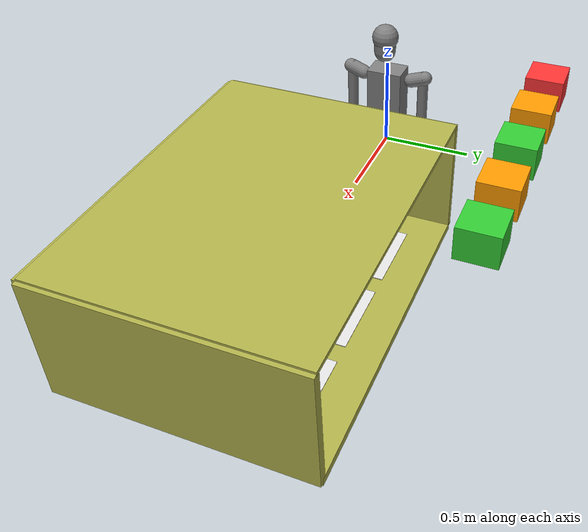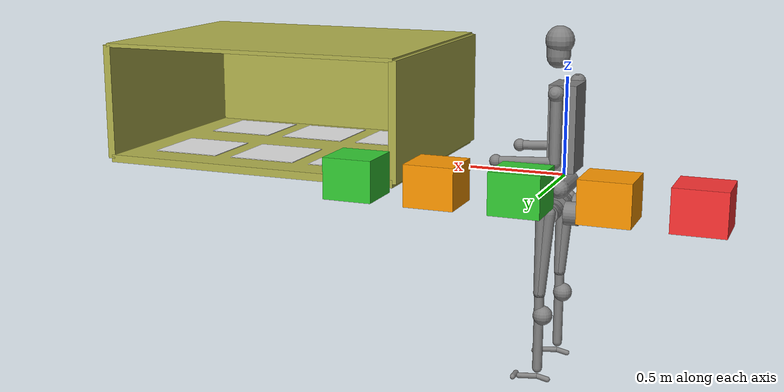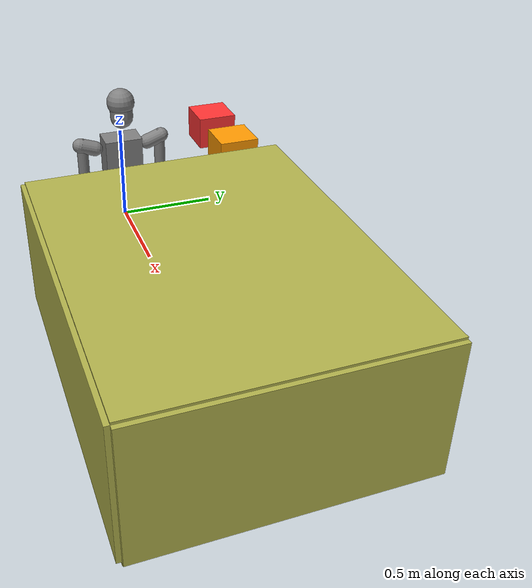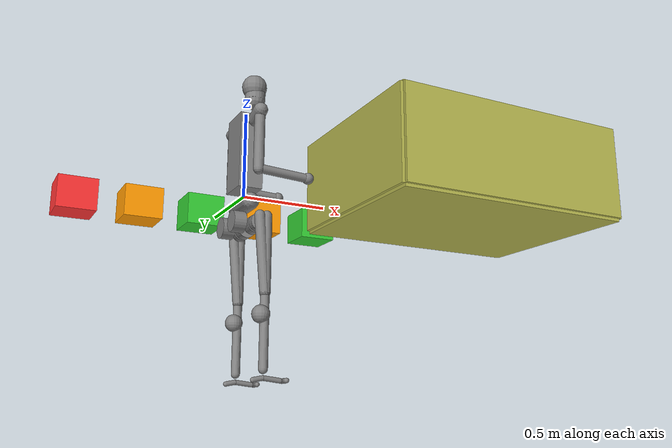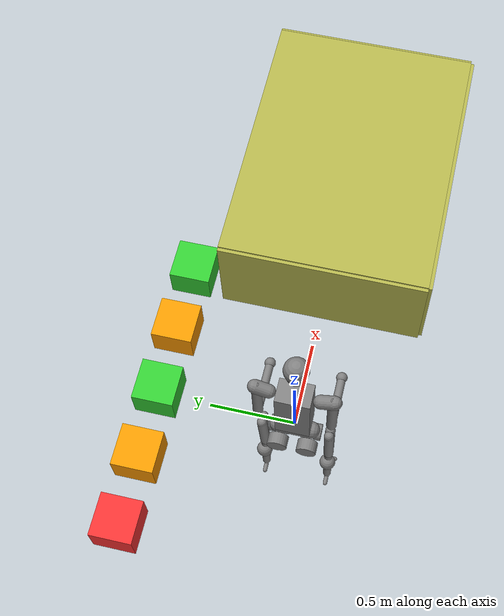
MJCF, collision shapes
<mujoco model="truck_loading_h1">
  <compiler angle="radian" autolimits="true" meshdir="mujoco_menagerie/unitree_h1/assets"/>

  <option timestep="0.002" gravity="0 0 -9.81"/>

  <include file="mujoco_menagerie/unitree_h1/scene.xml"/>

  <asset>
    <texture name="floor_tex" type="2d" builtin="checker" rgb1="0.6 0.6 0.6" rgb2="0.4 0.4 0.4" width="100" height="100"/>
    <material name="floor_mat" texture="floor_tex" texrepeat="5 5" reflectance="0.2"/>
    <material name="truck_mat" rgba="0.7 0.7 0.3 0.3"/>
    <material name="box_p1" rgba="1.0 0.2 0.2 1"/>
    <material name="box_p2" rgba="1.0 0.6 0.0 1"/>
    <material name="box_p3" rgba="0.2 0.8 0.2 1"/>
    <material name="slot_mat" rgba="0.9 0.9 0.9 0.4"/>
  </asset>

  <worldbody>
    <body name="truck" pos="1.5 0 0">
      <geom name="truck_floor" type="box" size="0.8 0.6 0.02" pos="0 0 0.02" material="truck_mat"/>
      <geom name="truck_left" type="box" size="0.02 0.6 0.3" pos="-0.8 0 0.32" material="truck_mat"/>
      <geom name="truck_right" type="box" size="0.02 0.6 0.3" pos="0.8 0 0.32" material="truck_mat"/>
      <geom name="truck_back" type="box" size="0.8 0.02 0.3" pos="0 -0.6 0.32" material="truck_mat"/>
      <geom name="truck_roof" type="box" size="0.8 0.6 0.01" pos="0 0 0.62" material="truck_mat"/>

      <geom name="slot_b1" type="box" size="0.18 0.18 0.002" pos="-0.45 -0.35 0.042" material="slot_mat"/>
      <geom name="slot_b2" type="box" size="0.18 0.18 0.002" pos="0.0 -0.35 0.042" material="slot_mat"/>
      <geom name="slot_b3" type="box" size="0.18 0.18 0.002" pos="0.45 -0.35 0.042" material="slot_mat"/>
      <geom name="slot_f1" type="box" size="0.18 0.18 0.002" pos="-0.45 0.25 0.042" material="slot_mat"/>
      <geom name="slot_f2" type="box" size="0.18 0.18 0.002" pos="0.0 0.25 0.042" material="slot_mat"/>
      <geom name="slot_f3" type="box" size="0.18 0.18 0.002" pos="0.45 0.25 0.042" material="slot_mat"/>
    </body>

    <body name="box_1" pos="-0.8 0.8 0.1">
      <freejoint/>
      <geom name="box_1_geom" type="box" size="0.12 0.12 0.1" material="box_p1" friction="0.8 0.005 0.0001"/>
      <site name="box_1_site" size="0.01"/>
    </body>

    <body name="box_2" pos="-0.4 0.8 0.1">
      <freejoint/>
      <geom name="box_2_geom" type="box" size="0.12 0.12 0.1" material="box_p2" friction="0.8 0.005 0.0001"/>
      <site name="box_2_site" size="0.01"/>
    </body>

    <body name="box_3" pos="0.0 0.8 0.1">
      <freejoint/>
      <geom name="box_3_geom" type="box" size="0.12 0.12 0.1" material="box_p3" friction="0.8 0.005 0.0001"/>
      <site name="box_3_site" size="0.01"/>
    </body>

    <body name="box_4" pos="0.4 0.8 0.1">
      <freejoint/>
      <geom name="box_4_geom" type="box" size="0.12 0.12 0.1" material="box_p2" friction="0.8 0.005 0.0001"/>
      <site name="box_4_site" size="0.01"/>
    </body>

    <body name="box_5" pos="0.8 0.8 0.1">
      <freejoint/>
      <geom name="box_5_geom" type="box" size="0.12 0.12 0.1" material="box_p3" friction="0.8 0.005 0.0001"/>
      <site name="box_5_site" size="0.01"/>
    </body>

    <camera name="topdown_cam" pos="1.5 0 4.0" euler="0 0 0" fovy="60"/>
    <camera name="side_cam" pos="-2 -2 2" euler="0.6 0 -0.8" fovy="50"/>
    <camera name="front_cam" pos="1.5 -3 1.5" euler="0.4 0 0" fovy="50"/>
  </worldbody>

  <sensor>
    <framepos name="box1_pos" objtype="site" objname="box_1_site"/>
    <framepos name="box2_pos" objtype="site" objname="box_2_site"/>
    <framepos name="box3_pos" objtype="site" objname="box_3_site"/>
    <framepos name="box4_pos" objtype="site" objname="box_4_site"/>
    <framepos name="box5_pos" objtype="site" objname="box_5_site"/>
  </sensor>
</mujoco>

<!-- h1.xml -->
<mujoco model="h1">
  <compiler angle="radian" meshdir="assets" autolimits="true"/>

  <statistic meansize="0.05"/>

  <default>
    <default class="h1">
      <joint damping="1" armature="0.1"/>
      <default class="visual">
        <geom type="mesh" contype="0" conaffinity="0" group="2" material="black"/>
      </default>
      <default class="collision">
        <geom group="3" mass="0" density="0"/>
        <default class="foot">
          <geom type="capsule" size=".014"/>
          <default class="foot1">
            <geom fromto="-.035 0 -0.056 .02 0 -0.045"/>
          </default>
          <default class="foot2">
            <geom fromto=".02 0 -0.045 .115 0 -0.056"/>
          </default>
          <default class="foot3">
            <geom fromto=".14 -.03 -0.056 .14 .03 -0.056"/>
          </default>
        </default>
      </default>
      <site size="0.001" rgba="0.5 0.5 0.5 0.3" group="4"/>
    </default>
  </default>

  <asset>
    <material name="black" rgba="0.1 0.1 0.1 1"/>
    <material name="white" rgba="1 1 1 1"/>

    <mesh file="pelvis.stl"/>
    <mesh file="left_hip_yaw_link.stl"/>
    <mesh file="left_hip_roll_link.stl"/>
    <mesh file="left_hip_pitch_link.stl"/>
    <mesh file="left_knee_link.stl"/>
    <mesh file="left_ankle_link.stl"/>
    <mesh file="right_hip_yaw_link.stl"/>
    <mesh file="right_hip_roll_link.stl"/>
    <mesh file="right_hip_pitch_link.stl"/>
    <mesh file="right_knee_link.stl"/>
    <mesh file="right_ankle_link.stl"/>
    <mesh file="torso_link.stl"/>
    <mesh file="left_shoulder_pitch_link.stl"/>
    <mesh file="left_shoulder_roll_link.stl"/>
    <mesh file="left_shoulder_yaw_link.stl"/>
    <mesh file="left_elbow_link.stl"/>
    <mesh file="right_shoulder_pitch_link.stl"/>
    <mesh file="right_shoulder_roll_link.stl"/>
    <mesh file="right_shoulder_yaw_link.stl"/>
    <mesh file="right_elbow_link.stl"/>
    <mesh file="logo_link.stl"/>
  </asset>

  <worldbody>
    <body name="pelvis" pos="0 0 0" childclass="h1">
      <inertial pos="-0.0002 4e-05 -0.04522" quat="0.498303 0.499454 -0.500496 0.501741" mass="5.39"
        diaginertia="0.0490211 0.0445821 0.00824619"/>
      <geom class="visual" mesh="pelvis"/>
      <body name="left_hip_yaw_link" pos="0 0.0875 -0.1742">
        <inertial pos="-0.04923 0.0001 0.0072" quat="0.69699 0.219193 0.233287 0.641667" mass="2.244"
          diaginertia="0.00304494 0.00296885 0.00189201"/>
        <joint name="left_hip_yaw" axis="0 0 1" range="-0.43 0.43"/>
        <geom class="visual" mesh="left_hip_yaw_link"/>
        <geom size="0.06 0.035" pos="-0.067 0 0" quat="0.707123 0 0.70709 0" type="cylinder" class="collision"/>
        <body name="left_hip_roll_link" pos="0.039468 0 0">
          <inertial pos="-0.0058 -0.00319 -9e-05" quat="0.0438242 0.70721 -0.0729075 0.701867" mass="2.232"
            diaginertia="0.00243264 0.00225325 0.00205492"/>
          <joint name="left_hip_roll" axis="1 0 0" range="-0.43 0.43"/>
          <geom class="visual" mesh="left_hip_roll_link"/>
          <geom class="collision" type="cylinder" size="0.05 0.03" quat="1 1 0 0" pos="0 -0.02 0"/>
          <body name="left_hip_pitch_link" pos="0 0.11536 0">
            <inertial pos="0.00746 -0.02346 -0.08193" quat="0.979828 0.0513522 -0.0169854 -0.192382" mass="4.152"
              diaginertia="0.0829503 0.0821457 0.00510909"/>
            <joint name="left_hip_pitch" axis="0 1 0" range="-1.57 1.57"/>
            <geom class="visual" mesh="left_hip_pitch_link"/>
            <geom class="collision" type="capsule" size="0.03" fromto="0.02 0 -0.4 -0.02 0 0.02"/>
            <geom class="collision" type="capsule" size="0.03" fromto="0.02 0 -0.4 0.02 0 0.02"/>
            <geom class="collision" type="cylinder" size="0.05 0.02" quat="1 1 0 0" pos="0 -0.07 0"/>
            <body name="left_knee_link" pos="0 0 -0.4">
              <inertial pos="-0.00136 -0.00512 -0.1384" quat="0.626132 -0.034227 -0.0416277 0.777852" mass="1.721"
                diaginertia="0.0125237 0.0123104 0.0019428"/>
              <joint name="left_knee" axis="0 1 0" range="-0.26 2.05"/>
              <geom class="visual" mesh="left_knee_link"/>
              <geom class="collision" type="capsule" size="0.025" fromto="0.02 0 -0.4 0.02 0 0"/>
              <geom class="collision" type="sphere" size="0.05" pos="0 0 -0.115"/>
              <body name="left_ankle_link" pos="0 0 -0.4">
                <inertial pos="0.06722 0.00015 -0.04497" quat="0.489101 0.503197 0.565782 0.432972" mass="0.446"
                  diaginertia="0.00220848 0.00218961 0.000214202"/>
                <joint name="left_ankle" axis="0 1 0" range="-0.87 0.52"/>
                <geom class="visual" mesh="left_ankle_link"/>
                <geom class="foot1"/>
                <geom class="foot2"/>
                <geom class="foot3"/>
              </body>
            </body>
          </body>
        </body>
      </body>
      <body name="right_hip_yaw_link" pos="0 -0.0875 -0.1742">
        <inertial pos="-0.04923 -0.0001 0.0072" quat="0.641667 0.233287 0.219193 0.69699" mass="2.244"
          diaginertia="0.00304494 0.00296885 0.00189201"/>
        <joint name="right_hip_yaw" axis="0 0 1" range="-0.43 0.43"/>
        <geom class="visual" mesh="right_hip_yaw_link"/>
        <geom size="0.06 0.035" pos="-0.067 0 0" quat="0.707123 0 0.70709 0" type="cylinder" class="collision"/>
        <body name="right_hip_roll_link" pos="0.039468 0 0">
          <inertial pos="-0.0058 0.00319 -9e-05" quat="-0.0438242 0.70721 0.0729075 0.701867" mass="2.232"
            diaginertia="0.00243264 0.00225325 0.00205492"/>
          <joint name="right_hip_roll" axis="1 0 0" range="-0.43 0.43"/>
          <geom class="visual" mesh="right_hip_roll_link"/>
          <geom class="collision" type="cylinder" size="0.05 0.03" quat="1 1 0 0" pos="0 0.02 0"/>
          <body name="right_hip_pitch_link" pos="0 -0.11536 0">
            <inertial pos="0.00746 0.02346 -0.08193" quat="0.979828 -0.0513522 -0.0169854 0.192382" mass="4.152"
              diaginertia="0.0829503 0.0821457 0.00510909"/>
            <joint name="right_hip_pitch" axis="0 1 0" range="-1.57 1.57"/>
            <geom class="visual" mesh="right_hip_pitch_link"/>
            <geom class="collision" type="capsule" size="0.03" fromto="0.02 0 -0.4 -0.02 0 0.02"/>
            <geom class="collision" type="capsule" size="0.03" fromto="0.02 0 -0.4 0.02 0 0.02"/>
            <geom class="collision" type="cylinder" size="0.05 0.02" quat="1 1 0 0" pos="0 0.07 0"/>
            <body name="right_knee_link" pos="0 0 -0.4">
              <inertial pos="-0.00136 0.00512 -0.1384" quat="0.777852 -0.0416277 -0.034227 0.626132" mass="1.721"
                diaginertia="0.0125237 0.0123104 0.0019428"/>
              <joint name="right_knee" axis="0 1 0" range="-0.26 2.05"/>
              <geom class="visual" mesh="right_knee_link"/>
              <geom class="collision" type="capsule" size="0.025" fromto="0.02 0 -0.4 0.02 0 0"/>
              <geom class="collision" type="sphere" size="0.05" pos="0 0 -0.115"/>
              <body name="right_ankle_link" pos="0 0 -0.4">
                <inertial pos="0.06722 -0.00015 -0.04497" quat="0.432972 0.565782 0.503197 0.489101" mass="0.446"
                  diaginertia="0.00220848 0.00218961 0.000214202"/>
                <joint name="right_ankle" axis="0 1 0" range="-0.87 0.52"/>
                <geom class="visual" mesh="right_ankle_link"/>
                <geom class="foot1"/>
                <geom class="foot2"/>
                <geom class="foot3"/>
              </body>
            </body>
          </body>
        </body>
      </body>
      <body name="torso_link">
        <inertial pos="0.000489 0.002797 0.20484" quat="0.999989 -0.00130808 -0.00282289 -0.00349105" mass="17.789"
          diaginertia="0.487315 0.409628 0.127837"/>
        <joint name="torso" axis="0 0 1" range="-2.35 2.35"/>
        <geom class="visual" mesh="torso_link"/>
        <geom class="visual" material="white" mesh="logo_link"/>
        <geom name="head" class="collision" type="capsule" size="0.06" fromto="0.05 0 0.68 0.05 0 0.6"/>
        <geom name="helmet" class="collision" type="sphere" size="0.073" pos="0.045 0 0.68"/>
        <geom name="torso" class="collision" type="box" size="0.07 0.1 0.22" pos="0 0 0.25"/>
        <geom name="hip" class="collision" type="capsule" size="0.05" fromto="0 -0.1 -0.05 0 0.1 -0.05"/>
        <site name="imu" pos="-0.04452 -0.01891 0.27756"/>
        <body name="left_shoulder_pitch_link" pos="0.0055 0.15535 0.42999" quat="0.976296 0.216438 0 0">
          <inertial pos="0.005045 0.053657 -0.015715" quat="0.814858 0.579236 -0.0201072 -0.00936488" mass="1.033"
            diaginertia="0.00129936 0.000987113 0.000858198"/>
          <joint name="left_shoulder_pitch" axis="0 1 0" range="-2.87 2.87"/>
          <geom class="visual" mesh="left_shoulder_pitch_link"/>
          <body name="left_shoulder_roll_link" pos="-0.0055 0.0565 -0.0165" quat="0.976296 -0.216438 0 0">
            <inertial pos="0.000679 0.00115 -0.094076" quat="0.732491 0.00917179 0.0766656 0.676384" mass="0.793"
              diaginertia="0.00170388 0.00158256 0.00100336"/>
            <joint name="left_shoulder_roll" axis="1 0 0" range="-0.34 3.11"/>
            <geom class="visual" mesh="left_shoulder_roll_link"/>
            <geom name="left_shoulder" class="collision" type="capsule" size="0.04" fromto="0 0.01 0.008 0 -0.07 -0.02"/>
            <body name="left_shoulder_yaw_link" pos="0 0 -0.1343">
              <inertial pos="0.01365 0.002767 -0.16266" quat="0.703042 -0.0331229 -0.0473362 0.708798" mass="0.839"
                diaginertia="0.00408038 0.00370367 0.000622687"/>
              <joint name="left_shoulder_yaw" axis="0 0 1" range="-1.3 4.45"/>
              <geom class="visual" mesh="left_shoulder_yaw_link"/>
              <geom class="collision" type="capsule" size="0.03" fromto="0 0 0.15 0 0 -0.2"/>
              <body name="left_elbow_link" pos="0.0185 0 -0.198">
                <inertial pos="0.15908 -0.000144 -0.015776" quat="0.0765232 0.720327 0.0853116 0.684102" mass="0.669"
                  diaginertia="0.00601829 0.00600579 0.000408305"/>
                <joint name="left_elbow" axis="0 1 0" range="-1.25 2.61"/>
                <geom class="visual" mesh="left_elbow_link"/>
                <geom class="collision" type="capsule" size="0.025" fromto="0 0 0 0.28 0 -0.015"/>
                <geom class="collision" type="sphere" size="0.033" pos="0.28 0 -0.015"/>
              </body>
            </body>
          </body>
        </body>
        <body name="right_shoulder_pitch_link" pos="0.0055 -0.15535 0.42999" quat="0.976296 -0.216438 0 0">
          <inertial pos="0.005045 -0.053657 -0.015715" quat="0.579236 0.814858 0.00936488 0.0201072" mass="1.033"
            diaginertia="0.00129936 0.000987113 0.000858198"/>
          <joint name="right_shoulder_pitch" axis="0 1 0" range="-2.87 2.87"/>
          <geom class="visual" mesh="right_shoulder_pitch_link"/>
          <body name="right_shoulder_roll_link" pos="-0.0055 -0.0565 -0.0165" quat="0.976296 0.216438 0 0">
            <inertial pos="0.000679 -0.00115 -0.094076" quat="0.676384 0.0766656 0.00917179 0.732491" mass="0.793"
              diaginertia="0.00170388 0.00158256 0.00100336"/>
            <joint name="right_shoulder_roll" axis="1 0 0" range="-3.11 0.34"/>
            <geom class="visual" mesh="right_shoulder_roll_link"/>
            <geom name="right_shoulder" class="collision" type="capsule" size="0.04" fromto="0 -0.01 0.008 0 0.07 -0.02"/>
            <body name="right_shoulder_yaw_link" pos="0 0 -0.1343">
              <inertial pos="0.01365 -0.002767 -0.16266" quat="0.708798 -0.0473362 -0.0331229 0.703042" mass="0.839"
                diaginertia="0.00408038 0.00370367 0.000622687"/>
              <joint name="right_shoulder_yaw" axis="0 0 1" range="-4.45 1.3"/>
              <geom class="visual" mesh="right_shoulder_yaw_link"/>
              <geom class="collision" type="capsule" size="0.03" fromto="0 0 0.15 0 0 -0.2"/>
              <body name="right_elbow_link" pos="0.0185 0 -0.198">
                <inertial pos="0.15908 0.000144 -0.015776" quat="-0.0765232 0.720327 -0.0853116 0.684102" mass="0.669"
                  diaginertia="0.00601829 0.00600579 0.000408305"/>
                <joint name="right_elbow" axis="0 1 0" range="-1.25 2.61"/>
                <geom class="visual" mesh="right_elbow_link"/>
                <geom class="collision" type="capsule" size="0.025" fromto="0 0 0 0.28 0 -0.015"/>
                <geom class="collision" type="sphere" size="0.033" pos="0.28 0 -0.015"/>
              </body>
            </body>
          </body>
        </body>
      </body>
    </body>
  </worldbody>

  <contact>
    <exclude body1="torso_link" body2="left_shoulder_roll_link"/>
    <exclude body1="torso_link" body2="right_shoulder_roll_link"/>
  </contact>

  <actuator>
    <motor class="h1" name="left_hip_yaw" joint="left_hip_yaw" ctrlrange="-200 200"/>
    <motor class="h1" name="left_hip_roll" joint="left_hip_roll" ctrlrange="-200 200"/>
    <motor class="h1" name="left_hip_pitch" joint="left_hip_pitch" ctrlrange="-200 200"/>
    <motor class="h1" name="left_knee" joint="left_knee" ctrlrange="-300 300"/>
    <motor class="h1" name="left_ankle" joint="left_ankle" ctrlrange="-40 40"/>
    <motor class="h1" name="right_hip_yaw" joint="right_hip_yaw" ctrlrange="-200 200"/>
    <motor class="h1" name="right_hip_roll" joint="right_hip_roll" ctrlrange="-200 200"/>
    <motor class="h1" name="right_hip_pitch" joint="right_hip_pitch" ctrlrange="-200 200"/>
    <motor class="h1" name="right_knee" joint="right_knee" ctrlrange="-300 300"/>
    <motor class="h1" name="right_ankle" joint="right_ankle" ctrlrange="-40 40"/>
    <motor class="h1" name="torso" joint="torso" ctrlrange="-200 200"/>
    <motor class="h1" name="left_shoulder_pitch" joint="left_shoulder_pitch" ctrlrange="-40 40"/>
    <motor class="h1" name="left_shoulder_roll" joint="left_shoulder_roll" ctrlrange="-40 40"/>
    <motor class="h1" name="left_shoulder_yaw" joint="left_shoulder_yaw" ctrlrange="-18 18"/>
    <motor class="h1" name="left_elbow" joint="left_elbow" ctrlrange="-18 18"/>
    <motor class="h1" name="right_shoulder_pitch" joint="right_shoulder_pitch" ctrlrange="-40 40"/>
    <motor class="h1" name="right_shoulder_roll" joint="right_shoulder_roll" ctrlrange="-40 40"/>
    <motor class="h1" name="right_shoulder_yaw" joint="right_shoulder_yaw" ctrlrange="-18 18"/>
    <motor class="h1" name="right_elbow" joint="right_elbow" ctrlrange="-18 18"/>
  </actuator>
</mujoco>

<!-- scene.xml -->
<mujoco model="h1 scene">
  <include file="h1.xml" />

  <statistic center="0 0 1" extent="1.8" />

  <visual>
    <headlight ambient="0.5 0.5 0.5" diffuse="0.5 0.5 0.5" specular="0.02 0.02 0.02" />
  </visual>

  <asset>
     <texture builtin="gradient" height="3072" rgb1="1.0 1.0 1.0" rgb2="1.0 1.0 1.0" type="skybox" width="512" />
  </asset>

  <worldbody>
  </worldbody>

  <keyframe>
    <key name="home" qpos="     0 0 -0.4 0.8 -0.4     0 0 -0.4 0.8 -0.4     0     0 0 0 0     0 0 0 0" />
  </keyframe>
</mujoco>
